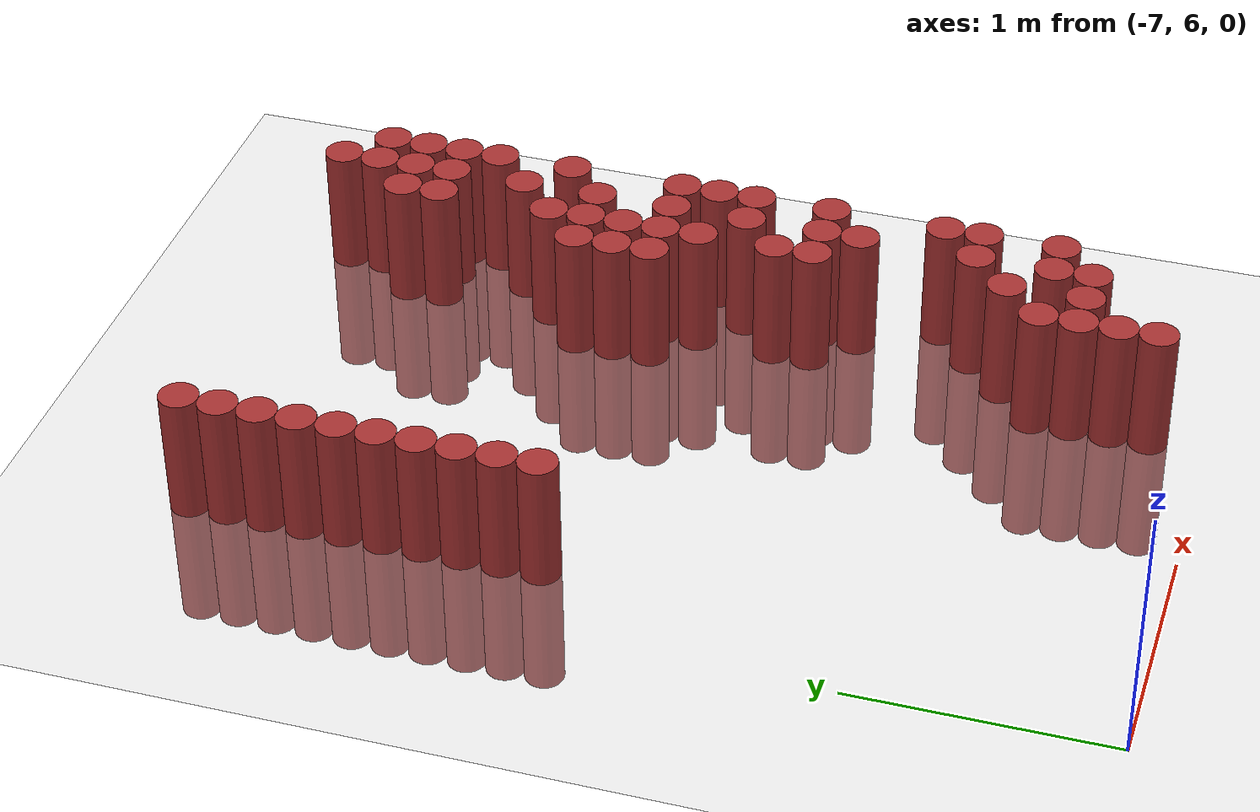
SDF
<sdf version="1.6">
 <world name="default">
  <model name="ground_plane">
   <static>1</static>
   <link name="link">
    <collision name="collision">
     <geometry><plane><normal>0 0 1</normal><size>100 100</size></plane></geometry>
     <surface><friction><ode><mu>100</mu><mu2>50</mu2></ode></friction></surface>
    </collision>
    <visual name="visual">
     <cast_shadows>0</cast_shadows>
     <geometry><plane><normal>0 0 1</normal><size>100 100</size></plane></geometry>
     <material>
      <script><uri>file://media/materials/scripts/gazebo.material</uri><name>Gazebo/Grey</name></script>
     </material>
    </visual>
   </link>
  </model>
  <model name="unit_cylinder_203">
   <static>1</static>
   <pose>-6.675000 8.175000 0.000000 0.000000 0.000000 0.000000</pose>
   <link name="link">
    <inertial>
     <mass>1</mass>
     <inertia><ixx>0.145833</ixx><ixy>0</ixy><ixz>0</ixz><iyy>0.145833</iyy><iyz>0</iyz><izz>0.125</izz></inertia>
    </inertial>
    <collision name="collision">
     <geometry><cylinder><radius>0.075000</radius><length>1</length></cylinder></geometry>
    </collision>
    <visual name="visual">
     <geometry><cylinder><radius>0.075000</radius><length>1</length></cylinder></geometry>
     <material>
      <ambient>0.648000 0.192000 0.192000 1</ambient>
      <diffuse>0.648000 0.192000 0.192000 1</diffuse>
     </material>
     <material>
      <script><name>Gazebo/Grey</name><uri>file://media/materials/scripts/gazebo.material</uri></script>
     </material>
    </visual>
   </link>
  </model>
  <model name="unit_cylinder_204">
   <static>1</static>
   <pose>-6.675000 8.325000 0.000000 0.000000 0.000000 0.000000</pose>
   <link name="link">
    <inertial>
     <mass>1</mass>
     <inertia><ixx>0.145833</ixx><ixy>0</ixy><ixz>0</ixz><iyy>0.145833</iyy><iyz>0</iyz><izz>0.125</izz></inertia>
    </inertial>
    <collision name="collision">
     <geometry><cylinder><radius>0.075000</radius><length>1</length></cylinder></geometry>
    </collision>
    <visual name="visual">
     <geometry><cylinder><radius>0.075000</radius><length>1</length></cylinder></geometry>
     <material>
      <ambient>0.648000 0.192000 0.192000 1</ambient>
      <diffuse>0.648000 0.192000 0.192000 1</diffuse>
     </material>
     <material>
      <script><name>Gazebo/Grey</name><uri>file://media/materials/scripts/gazebo.material</uri></script>
     </material>
    </visual>
   </link>
  </model>
  <model name="unit_cylinder_205">
   <static>1</static>
   <pose>-6.675000 8.475000 0.000000 0.000000 0.000000 0.000000</pose>
   <link name="link">
    <inertial>
     <mass>1</mass>
     <inertia><ixx>0.145833</ixx><ixy>0</ixy><ixz>0</ixz><iyy>0.145833</iyy><iyz>0</iyz><izz>0.125</izz></inertia>
    </inertial>
    <collision name="collision">
     <geometry><cylinder><radius>0.075000</radius><length>1</length></cylinder></geometry>
    </collision>
    <visual name="visual">
     <geometry><cylinder><radius>0.075000</radius><length>1</length></cylinder></geometry>
     <material>
      <ambient>0.648000 0.192000 0.192000 1</ambient>
      <diffuse>0.648000 0.192000 0.192000 1</diffuse>
     </material>
     <material>
      <script><name>Gazebo/Grey</name><uri>file://media/materials/scripts/gazebo.material</uri></script>
     </material>
    </visual>
   </link>
  </model>
  <model name="unit_cylinder_206">
   <static>1</static>
   <pose>-6.675000 8.625000 0.000000 0.000000 0.000000 0.000000</pose>
   <link name="link">
    <inertial>
     <mass>1</mass>
     <inertia><ixx>0.145833</ixx><ixy>0</ixy><ixz>0</ixz><iyy>0.145833</iyy><iyz>0</iyz><izz>0.125</izz></inertia>
    </inertial>
    <collision name="collision">
     <geometry><cylinder><radius>0.075000</radius><length>1</length></cylinder></geometry>
    </collision>
    <visual name="visual">
     <geometry><cylinder><radius>0.075000</radius><length>1</length></cylinder></geometry>
     <material>
      <ambient>0.648000 0.192000 0.192000 1</ambient>
      <diffuse>0.648000 0.192000 0.192000 1</diffuse>
     </material>
     <material>
      <script><name>Gazebo/Grey</name><uri>file://media/materials/scripts/gazebo.material</uri></script>
     </material>
    </visual>
   </link>
  </model>
  <model name="unit_cylinder_207">
   <static>1</static>
   <pose>-6.675000 8.775000 0.000000 0.000000 0.000000 0.000000</pose>
   <link name="link">
    <inertial>
     <mass>1</mass>
     <inertia><ixx>0.145833</ixx><ixy>0</ixy><ixz>0</ixz><iyy>0.145833</iyy><iyz>0</iyz><izz>0.125</izz></inertia>
    </inertial>
    <collision name="collision">
     <geometry><cylinder><radius>0.075000</radius><length>1</length></cylinder></geometry>
    </collision>
    <visual name="visual">
     <geometry><cylinder><radius>0.075000</radius><length>1</length></cylinder></geometry>
     <material>
      <ambient>0.648000 0.192000 0.192000 1</ambient>
      <diffuse>0.648000 0.192000 0.192000 1</diffuse>
     </material>
     <material>
      <script><name>Gazebo/Grey</name><uri>file://media/materials/scripts/gazebo.material</uri></script>
     </material>
    </visual>
   </link>
  </model>
  <model name="unit_cylinder_208">
   <static>1</static>
   <pose>-6.675000 8.925000 0.000000 0.000000 0.000000 0.000000</pose>
   <link name="link">
    <inertial>
     <mass>1</mass>
     <inertia><ixx>0.145833</ixx><ixy>0</ixy><ixz>0</ixz><iyy>0.145833</iyy><iyz>0</iyz><izz>0.125</izz></inertia>
    </inertial>
    <collision name="collision">
     <geometry><cylinder><radius>0.075000</radius><length>1</length></cylinder></geometry>
    </collision>
    <visual name="visual">
     <geometry><cylinder><radius>0.075000</radius><length>1</length></cylinder></geometry>
     <material>
      <ambient>0.648000 0.192000 0.192000 1</ambient>
      <diffuse>0.648000 0.192000 0.192000 1</diffuse>
     </material>
     <material>
      <script><name>Gazebo/Grey</name><uri>file://media/materials/scripts/gazebo.material</uri></script>
     </material>
    </visual>
   </link>
  </model>
  <model name="unit_cylinder_209">
   <static>1</static>
   <pose>-6.675000 9.075000 0.000000 0.000000 0.000000 0.000000</pose>
   <link name="link">
    <inertial>
     <mass>1</mass>
     <inertia><ixx>0.145833</ixx><ixy>0</ixy><ixz>0</ixz><iyy>0.145833</iyy><iyz>0</iyz><izz>0.125</izz></inertia>
    </inertial>
    <collision name="collision">
     <geometry><cylinder><radius>0.075000</radius><length>1</length></cylinder></geometry>
    </collision>
    <visual name="visual">
     <geometry><cylinder><radius>0.075000</radius><length>1</length></cylinder></geometry>
     <material>
      <ambient>0.648000 0.192000 0.192000 1</ambient>
      <diffuse>0.648000 0.192000 0.192000 1</diffuse>
     </material>
     <material>
      <script><name>Gazebo/Grey</name><uri>file://media/materials/scripts/gazebo.material</uri></script>
     </material>
    </visual>
   </link>
  </model>
  <model name="unit_cylinder_210">
   <static>1</static>
   <pose>-6.675000 9.225000 0.000000 0.000000 0.000000 0.000000</pose>
   <link name="link">
    <inertial>
     <mass>1</mass>
     <inertia><ixx>0.145833</ixx><ixy>0</ixy><ixz>0</ixz><iyy>0.145833</iyy><iyz>0</iyz><izz>0.125</izz></inertia>
    </inertial>
    <collision name="collision">
     <geometry><cylinder><radius>0.075000</radius><length>1</length></cylinder></geometry>
    </collision>
    <visual name="visual">
     <geometry><cylinder><radius>0.075000</radius><length>1</length></cylinder></geometry>
     <material>
      <ambient>0.648000 0.192000 0.192000 1</ambient>
      <diffuse>0.648000 0.192000 0.192000 1</diffuse>
     </material>
     <material>
      <script><name>Gazebo/Grey</name><uri>file://media/materials/scripts/gazebo.material</uri></script>
     </material>
    </visual>
   </link>
  </model>
  <model name="unit_cylinder_211">
   <static>1</static>
   <pose>-6.675000 9.375000 0.000000 0.000000 0.000000 0.000000</pose>
   <link name="link">
    <inertial>
     <mass>1</mass>
     <inertia><ixx>0.145833</ixx><ixy>0</ixy><ixz>0</ixz><iyy>0.145833</iyy><iyz>0</iyz><izz>0.125</izz></inertia>
    </inertial>
    <collision name="collision">
     <geometry><cylinder><radius>0.075000</radius><length>1</length></cylinder></geometry>
    </collision>
    <visual name="visual">
     <geometry><cylinder><radius>0.075000</radius><length>1</length></cylinder></geometry>
     <material>
      <ambient>0.648000 0.192000 0.192000 1</ambient>
      <diffuse>0.648000 0.192000 0.192000 1</diffuse>
     </material>
     <material>
      <script><name>Gazebo/Grey</name><uri>file://media/materials/scripts/gazebo.material</uri></script>
     </material>
    </visual>
   </link>
  </model>
  <model name="unit_cylinder_212">
   <static>1</static>
   <pose>-6.675000 9.525000 0.000000 0.000000 0.000000 0.000000</pose>
   <link name="link">
    <inertial>
     <mass>1</mass>
     <inertia><ixx>0.145833</ixx><ixy>0</ixy><ixz>0</ixz><iyy>0.145833</iyy><iyz>0</iyz><izz>0.125</izz></inertia>
    </inertial>
    <collision name="collision">
     <geometry><cylinder><radius>0.075000</radius><length>1</length></cylinder></geometry>
    </collision>
    <visual name="visual">
     <geometry><cylinder><radius>0.075000</radius><length>1</length></cylinder></geometry>
     <material>
      <ambient>0.648000 0.192000 0.192000 1</ambient>
      <diffuse>0.648000 0.192000 0.192000 1</diffuse>
     </material>
     <material>
      <script><name>Gazebo/Grey</name><uri>file://media/materials/scripts/gazebo.material</uri></script>
     </material>
    </visual>
   </link>
  </model>
  <model name="unit_cylinder_221">
   <static>1</static>
   <pose>-5.325000 6.225000 0.000000 0.000000 0.000000 0.000000</pose>
   <link name="link">
    <inertial>
     <mass>1</mass>
     <inertia><ixx>0.145833</ixx><ixy>0</ixy><ixz>0</ixz><iyy>0.145833</iyy><iyz>0</iyz><izz>0.125</izz></inertia>
    </inertial>
    <collision name="collision">
     <geometry><cylinder><radius>0.075000</radius><length>1</length></cylinder></geometry>
    </collision>
    <visual name="visual">
     <geometry><cylinder><radius>0.075000</radius><length>1</length></cylinder></geometry>
     <material>
      <ambient>0.648000 0.192000 0.192000 1</ambient>
      <diffuse>0.648000 0.192000 0.192000 1</diffuse>
     </material>
     <material>
      <script><name>Gazebo/Grey</name><uri>file://media/materials/scripts/gazebo.material</uri></script>
     </material>
    </visual>
   </link>
  </model>
  <model name="unit_cylinder_222">
   <static>1</static>
   <pose>-5.325000 6.375000 0.000000 0.000000 0.000000 0.000000</pose>
   <link name="link">
    <inertial>
     <mass>1</mass>
     <inertia><ixx>0.145833</ixx><ixy>0</ixy><ixz>0</ixz><iyy>0.145833</iyy><iyz>0</iyz><izz>0.125</izz></inertia>
    </inertial>
    <collision name="collision">
     <geometry><cylinder><radius>0.075000</radius><length>1</length></cylinder></geometry>
    </collision>
    <visual name="visual">
     <geometry><cylinder><radius>0.075000</radius><length>1</length></cylinder></geometry>
     <material>
      <ambient>0.648000 0.192000 0.192000 1</ambient>
      <diffuse>0.648000 0.192000 0.192000 1</diffuse>
     </material>
     <material>
      <script><name>Gazebo/Grey</name><uri>file://media/materials/scripts/gazebo.material</uri></script>
     </material>
    </visual>
   </link>
  </model>
  <model name="unit_cylinder_223">
   <static>1</static>
   <pose>-5.325000 6.525000 0.000000 0.000000 0.000000 0.000000</pose>
   <link name="link">
    <inertial>
     <mass>1</mass>
     <inertia><ixx>0.145833</ixx><ixy>0</ixy><ixz>0</ixz><iyy>0.145833</iyy><iyz>0</iyz><izz>0.125</izz></inertia>
    </inertial>
    <collision name="collision">
     <geometry><cylinder><radius>0.075000</radius><length>1</length></cylinder></geometry>
    </collision>
    <visual name="visual">
     <geometry><cylinder><radius>0.075000</radius><length>1</length></cylinder></geometry>
     <material>
      <ambient>0.648000 0.192000 0.192000 1</ambient>
      <diffuse>0.648000 0.192000 0.192000 1</diffuse>
     </material>
     <material>
      <script><name>Gazebo/Grey</name><uri>file://media/materials/scripts/gazebo.material</uri></script>
     </material>
    </visual>
   </link>
  </model>
  <model name="unit_cylinder_224">
   <static>1</static>
   <pose>-5.325000 6.675000 0.000000 0.000000 0.000000 0.000000</pose>
   <link name="link">
    <inertial>
     <mass>1</mass>
     <inertia><ixx>0.145833</ixx><ixy>0</ixy><ixz>0</ixz><iyy>0.145833</iyy><iyz>0</iyz><izz>0.125</izz></inertia>
    </inertial>
    <collision name="collision">
     <geometry><cylinder><radius>0.075000</radius><length>1</length></cylinder></geometry>
    </collision>
    <visual name="visual">
     <geometry><cylinder><radius>0.075000</radius><length>1</length></cylinder></geometry>
     <material>
      <ambient>0.648000 0.192000 0.192000 1</ambient>
      <diffuse>0.648000 0.192000 0.192000 1</diffuse>
     </material>
     <material>
      <script><name>Gazebo/Grey</name><uri>file://media/materials/scripts/gazebo.material</uri></script>
     </material>
    </visual>
   </link>
  </model>
  <model name="unit_cylinder_225">
   <static>1</static>
   <pose>-5.325000 8.175000 0.000000 0.000000 0.000000 0.000000</pose>
   <link name="link">
    <inertial>
     <mass>1</mass>
     <inertia><ixx>0.145833</ixx><ixy>0</ixy><ixz>0</ixz><iyy>0.145833</iyy><iyz>0</iyz><izz>0.125</izz></inertia>
    </inertial>
    <collision name="collision">
     <geometry><cylinder><radius>0.075000</radius><length>1</length></cylinder></geometry>
    </collision>
    <visual name="visual">
     <geometry><cylinder><radius>0.075000</radius><length>1</length></cylinder></geometry>
     <material>
      <ambient>0.648000 0.192000 0.192000 1</ambient>
      <diffuse>0.648000 0.192000 0.192000 1</diffuse>
     </material>
     <material>
      <script><name>Gazebo/Grey</name><uri>file://media/materials/scripts/gazebo.material</uri></script>
     </material>
    </visual>
   </link>
  </model>
  <model name="unit_cylinder_226">
   <static>1</static>
   <pose>-5.325000 8.325000 0.000000 0.000000 0.000000 0.000000</pose>
   <link name="link">
    <inertial>
     <mass>1</mass>
     <inertia><ixx>0.145833</ixx><ixy>0</ixy><ixz>0</ixz><iyy>0.145833</iyy><iyz>0</iyz><izz>0.125</izz></inertia>
    </inertial>
    <collision name="collision">
     <geometry><cylinder><radius>0.075000</radius><length>1</length></cylinder></geometry>
    </collision>
    <visual name="visual">
     <geometry><cylinder><radius>0.075000</radius><length>1</length></cylinder></geometry>
     <material>
      <ambient>0.648000 0.192000 0.192000 1</ambient>
      <diffuse>0.648000 0.192000 0.192000 1</diffuse>
     </material>
     <material>
      <script><name>Gazebo/Grey</name><uri>file://media/materials/scripts/gazebo.material</uri></script>
     </material>
    </visual>
   </link>
  </model>
  <model name="unit_cylinder_227">
   <static>1</static>
   <pose>-5.325000 8.475000 0.000000 0.000000 0.000000 0.000000</pose>
   <link name="link">
    <inertial>
     <mass>1</mass>
     <inertia><ixx>0.145833</ixx><ixy>0</ixy><ixz>0</ixz><iyy>0.145833</iyy><iyz>0</iyz><izz>0.125</izz></inertia>
    </inertial>
    <collision name="collision">
     <geometry><cylinder><radius>0.075000</radius><length>1</length></cylinder></geometry>
    </collision>
    <visual name="visual">
     <geometry><cylinder><radius>0.075000</radius><length>1</length></cylinder></geometry>
     <material>
      <ambient>0.648000 0.192000 0.192000 1</ambient>
      <diffuse>0.648000 0.192000 0.192000 1</diffuse>
     </material>
     <material>
      <script><name>Gazebo/Grey</name><uri>file://media/materials/scripts/gazebo.material</uri></script>
     </material>
    </visual>
   </link>
  </model>
  <model name="unit_cylinder_230">
   <static>1</static>
   <pose>-5.175000 6.525000 0.000000 0.000000 0.000000 0.000000</pose>
   <link name="link">
    <inertial>
     <mass>1</mass>
     <inertia><ixx>0.145833</ixx><ixy>0</ixy><ixz>0</ixz><iyy>0.145833</iyy><iyz>0</iyz><izz>0.125</izz></inertia>
    </inertial>
    <collision name="collision">
     <geometry><cylinder><radius>0.075000</radius><length>1</length></cylinder></geometry>
    </collision>
    <visual name="visual">
     <geometry><cylinder><radius>0.075000</radius><length>1</length></cylinder></geometry>
     <material>
      <ambient>0.648000 0.192000 0.192000 1</ambient>
      <diffuse>0.648000 0.192000 0.192000 1</diffuse>
     </material>
     <material>
      <script><name>Gazebo/Grey</name><uri>file://media/materials/scripts/gazebo.material</uri></script>
     </material>
    </visual>
   </link>
  </model>
  <model name="unit_cylinder_231">
   <static>1</static>
   <pose>-5.175000 6.825000 0.000000 0.000000 0.000000 0.000000</pose>
   <link name="link">
    <inertial>
     <mass>1</mass>
     <inertia><ixx>0.145833</ixx><ixy>0</ixy><ixz>0</ixz><iyy>0.145833</iyy><iyz>0</iyz><izz>0.125</izz></inertia>
    </inertial>
    <collision name="collision">
     <geometry><cylinder><radius>0.075000</radius><length>1</length></cylinder></geometry>
    </collision>
    <visual name="visual">
     <geometry><cylinder><radius>0.075000</radius><length>1</length></cylinder></geometry>
     <material>
      <ambient>0.648000 0.192000 0.192000 1</ambient>
      <diffuse>0.648000 0.192000 0.192000 1</diffuse>
     </material>
     <material>
      <script><name>Gazebo/Grey</name><uri>file://media/materials/scripts/gazebo.material</uri></script>
     </material>
    </visual>
   </link>
  </model>
  <model name="unit_cylinder_232">
   <static>1</static>
   <pose>-5.175000 7.575000 0.000000 0.000000 0.000000 0.000000</pose>
   <link name="link">
    <inertial>
     <mass>1</mass>
     <inertia><ixx>0.145833</ixx><ixy>0</ixy><ixz>0</ixz><iyy>0.145833</iyy><iyz>0</iyz><izz>0.125</izz></inertia>
    </inertial>
    <collision name="collision">
     <geometry><cylinder><radius>0.075000</radius><length>1</length></cylinder></geometry>
    </collision>
    <visual name="visual">
     <geometry><cylinder><radius>0.075000</radius><length>1</length></cylinder></geometry>
     <material>
      <ambient>0.648000 0.192000 0.192000 1</ambient>
      <diffuse>0.648000 0.192000 0.192000 1</diffuse>
     </material>
     <material>
      <script><name>Gazebo/Grey</name><uri>file://media/materials/scripts/gazebo.material</uri></script>
     </material>
    </visual>
   </link>
  </model>
  <model name="unit_cylinder_233">
   <static>1</static>
   <pose>-5.175000 7.725000 0.000000 0.000000 0.000000 0.000000</pose>
   <link name="link">
    <inertial>
     <mass>1</mass>
     <inertia><ixx>0.145833</ixx><ixy>0</ixy><ixz>0</ixz><iyy>0.145833</iyy><iyz>0</iyz><izz>0.125</izz></inertia>
    </inertial>
    <collision name="collision">
     <geometry><cylinder><radius>0.075000</radius><length>1</length></cylinder></geometry>
    </collision>
    <visual name="visual">
     <geometry><cylinder><radius>0.075000</radius><length>1</length></cylinder></geometry>
     <material>
      <ambient>0.648000 0.192000 0.192000 1</ambient>
      <diffuse>0.648000 0.192000 0.192000 1</diffuse>
     </material>
     <material>
      <script><name>Gazebo/Grey</name><uri>file://media/materials/scripts/gazebo.material</uri></script>
     </material>
    </visual>
   </link>
  </model>
  <model name="unit_cylinder_234">
   <static>1</static>
   <pose>-5.175000 8.025000 0.000000 0.000000 0.000000 0.000000</pose>
   <link name="link">
    <inertial>
     <mass>1</mass>
     <inertia><ixx>0.145833</ixx><ixy>0</ixy><ixz>0</ixz><iyy>0.145833</iyy><iyz>0</iyz><izz>0.125</izz></inertia>
    </inertial>
    <collision name="collision">
     <geometry><cylinder><radius>0.075000</radius><length>1</length></cylinder></geometry>
    </collision>
    <visual name="visual">
     <geometry><cylinder><radius>0.075000</radius><length>1</length></cylinder></geometry>
     <material>
      <ambient>0.648000 0.192000 0.192000 1</ambient>
      <diffuse>0.648000 0.192000 0.192000 1</diffuse>
     </material>
     <material>
      <script><name>Gazebo/Grey</name><uri>file://media/materials/scripts/gazebo.material</uri></script>
     </material>
    </visual>
   </link>
  </model>
  <model name="unit_cylinder_235">
   <static>1</static>
   <pose>-5.175000 8.175000 0.000000 0.000000 0.000000 0.000000</pose>
   <link name="link">
    <inertial>
     <mass>1</mass>
     <inertia><ixx>0.145833</ixx><ixy>0</ixy><ixz>0</ixz><iyy>0.145833</iyy><iyz>0</iyz><izz>0.125</izz></inertia>
    </inertial>
    <collision name="collision">
     <geometry><cylinder><radius>0.075000</radius><length>1</length></cylinder></geometry>
    </collision>
    <visual name="visual">
     <geometry><cylinder><radius>0.075000</radius><length>1</length></cylinder></geometry>
     <material>
      <ambient>0.648000 0.192000 0.192000 1</ambient>
      <diffuse>0.648000 0.192000 0.192000 1</diffuse>
     </material>
     <material>
      <script><name>Gazebo/Grey</name><uri>file://media/materials/scripts/gazebo.material</uri></script>
     </material>
    </visual>
   </link>
  </model>
  <model name="unit_cylinder_236">
   <static>1</static>
   <pose>-5.175000 8.325000 0.000000 0.000000 0.000000 0.000000</pose>
   <link name="link">
    <inertial>
     <mass>1</mass>
     <inertia><ixx>0.145833</ixx><ixy>0</ixy><ixz>0</ixz><iyy>0.145833</iyy><iyz>0</iyz><izz>0.125</izz></inertia>
    </inertial>
    <collision name="collision">
     <geometry><cylinder><radius>0.075000</radius><length>1</length></cylinder></geometry>
    </collision>
    <visual name="visual">
     <geometry><cylinder><radius>0.075000</radius><length>1</length></cylinder></geometry>
     <material>
      <ambient>0.648000 0.192000 0.192000 1</ambient>
      <diffuse>0.648000 0.192000 0.192000 1</diffuse>
     </material>
     <material>
      <script><name>Gazebo/Grey</name><uri>file://media/materials/scripts/gazebo.material</uri></script>
     </material>
    </visual>
   </link>
  </model>
  <model name="unit_cylinder_237">
   <static>1</static>
   <pose>-5.175000 8.475000 0.000000 0.000000 0.000000 0.000000</pose>
   <link name="link">
    <inertial>
     <mass>1</mass>
     <inertia><ixx>0.145833</ixx><ixy>0</ixy><ixz>0</ixz><iyy>0.145833</iyy><iyz>0</iyz><izz>0.125</izz></inertia>
    </inertial>
    <collision name="collision">
     <geometry><cylinder><radius>0.075000</radius><length>1</length></cylinder></geometry>
    </collision>
    <visual name="visual">
     <geometry><cylinder><radius>0.075000</radius><length>1</length></cylinder></geometry>
     <material>
      <ambient>0.648000 0.192000 0.192000 1</ambient>
      <diffuse>0.648000 0.192000 0.192000 1</diffuse>
     </material>
     <material>
      <script><name>Gazebo/Grey</name><uri>file://media/materials/scripts/gazebo.material</uri></script>
     </material>
    </visual>
   </link>
  </model>
  <model name="unit_cylinder_238">
   <static>1</static>
   <pose>-5.175000 8.625000 0.000000 0.000000 0.000000 0.000000</pose>
   <link name="link">
    <inertial>
     <mass>1</mass>
     <inertia><ixx>0.145833</ixx><ixy>0</ixy><ixz>0</ixz><iyy>0.145833</iyy><iyz>0</iyz><izz>0.125</izz></inertia>
    </inertial>
    <collision name="collision">
     <geometry><cylinder><radius>0.075000</radius><length>1</length></cylinder></geometry>
    </collision>
    <visual name="visual">
     <geometry><cylinder><radius>0.075000</radius><length>1</length></cylinder></geometry>
     <material>
      <ambient>0.648000 0.192000 0.192000 1</ambient>
      <diffuse>0.648000 0.192000 0.192000 1</diffuse>
     </material>
     <material>
      <script><name>Gazebo/Grey</name><uri>file://media/materials/scripts/gazebo.material</uri></script>
     </material>
    </visual>
   </link>
  </model>
  <model name="unit_cylinder_239">
   <static>1</static>
   <pose>-5.175000 9.075000 0.000000 0.000000 0.000000 0.000000</pose>
   <link name="link">
    <inertial>
     <mass>1</mass>
     <inertia><ixx>0.145833</ixx><ixy>0</ixy><ixz>0</ixz><iyy>0.145833</iyy><iyz>0</iyz><izz>0.125</izz></inertia>
    </inertial>
    <collision name="collision">
     <geometry><cylinder><radius>0.075000</radius><length>1</length></cylinder></geometry>
    </collision>
    <visual name="visual">
     <geometry><cylinder><radius>0.075000</radius><length>1</length></cylinder></geometry>
     <material>
      <ambient>0.648000 0.192000 0.192000 1</ambient>
      <diffuse>0.648000 0.192000 0.192000 1</diffuse>
     </material>
     <material>
      <script><name>Gazebo/Grey</name><uri>file://media/materials/scripts/gazebo.material</uri></script>
     </material>
    </visual>
   </link>
  </model>
  <model name="unit_cylinder_240">
   <static>1</static>
   <pose>-5.175000 9.225000 0.000000 0.000000 0.000000 0.000000</pose>
   <link name="link">
    <inertial>
     <mass>1</mass>
     <inertia><ixx>0.145833</ixx><ixy>0</ixy><ixz>0</ixz><iyy>0.145833</iyy><iyz>0</iyz><izz>0.125</izz></inertia>
    </inertial>
    <collision name="collision">
     <geometry><cylinder><radius>0.075000</radius><length>1</length></cylinder></geometry>
    </collision>
    <visual name="visual">
     <geometry><cylinder><radius>0.075000</radius><length>1</length></cylinder></geometry>
     <material>
      <ambient>0.648000 0.192000 0.192000 1</ambient>
      <diffuse>0.648000 0.192000 0.192000 1</diffuse>
     </material>
     <material>
      <script><name>Gazebo/Grey</name><uri>file://media/materials/scripts/gazebo.material</uri></script>
     </material>
    </visual>
   </link>
  </model>
  <model name="unit_cylinder_246">
   <static>1</static>
   <pose>-5.025000 6.525000 0.000000 0.000000 0.000000 0.000000</pose>
   <link name="link">
    <inertial>
     <mass>1</mass>
     <inertia><ixx>0.145833</ixx><ixy>0</ixy><ixz>0</ixz><iyy>0.145833</iyy><iyz>0</iyz><izz>0.125</izz></inertia>
    </inertial>
    <collision name="collision">
     <geometry><cylinder><radius>0.075000</radius><length>1</length></cylinder></geometry>
    </collision>
    <visual name="visual">
     <geometry><cylinder><radius>0.075000</radius><length>1</length></cylinder></geometry>
     <material>
      <ambient>0.648000 0.192000 0.192000 1</ambient>
      <diffuse>0.648000 0.192000 0.192000 1</diffuse>
     </material>
     <material>
      <script><name>Gazebo/Grey</name><uri>file://media/materials/scripts/gazebo.material</uri></script>
     </material>
    </visual>
   </link>
  </model>
  <model name="unit_cylinder_247">
   <static>1</static>
   <pose>-5.025000 6.675000 0.000000 0.000000 0.000000 0.000000</pose>
   <link name="link">
    <inertial>
     <mass>1</mass>
     <inertia><ixx>0.145833</ixx><ixy>0</ixy><ixz>0</ixz><iyy>0.145833</iyy><iyz>0</iyz><izz>0.125</izz></inertia>
    </inertial>
    <collision name="collision">
     <geometry><cylinder><radius>0.075000</radius><length>1</length></cylinder></geometry>
    </collision>
    <visual name="visual">
     <geometry><cylinder><radius>0.075000</radius><length>1</length></cylinder></geometry>
     <material>
      <ambient>0.648000 0.192000 0.192000 1</ambient>
      <diffuse>0.648000 0.192000 0.192000 1</diffuse>
     </material>
     <material>
      <script><name>Gazebo/Grey</name><uri>file://media/materials/scripts/gazebo.material</uri></script>
     </material>
    </visual>
   </link>
  </model>
  <model name="unit_cylinder_248">
   <static>1</static>
   <pose>-5.025000 6.975000 0.000000 0.000000 0.000000 0.000000</pose>
   <link name="link">
    <inertial>
     <mass>1</mass>
     <inertia><ixx>0.145833</ixx><ixy>0</ixy><ixz>0</ixz><iyy>0.145833</iyy><iyz>0</iyz><izz>0.125</izz></inertia>
    </inertial>
    <collision name="collision">
     <geometry><cylinder><radius>0.075000</radius><length>1</length></cylinder></geometry>
    </collision>
    <visual name="visual">
     <geometry><cylinder><radius>0.075000</radius><length>1</length></cylinder></geometry>
     <material>
      <ambient>0.648000 0.192000 0.192000 1</ambient>
      <diffuse>0.648000 0.192000 0.192000 1</diffuse>
     </material>
     <material>
      <script><name>Gazebo/Grey</name><uri>file://media/materials/scripts/gazebo.material</uri></script>
     </material>
    </visual>
   </link>
  </model>
  <model name="unit_cylinder_249">
   <static>1</static>
   <pose>-5.025000 7.425000 0.000000 0.000000 0.000000 0.000000</pose>
   <link name="link">
    <inertial>
     <mass>1</mass>
     <inertia><ixx>0.145833</ixx><ixy>0</ixy><ixz>0</ixz><iyy>0.145833</iyy><iyz>0</iyz><izz>0.125</izz></inertia>
    </inertial>
    <collision name="collision">
     <geometry><cylinder><radius>0.075000</radius><length>1</length></cylinder></geometry>
    </collision>
    <visual name="visual">
     <geometry><cylinder><radius>0.075000</radius><length>1</length></cylinder></geometry>
     <material>
      <ambient>0.648000 0.192000 0.192000 1</ambient>
      <diffuse>0.648000 0.192000 0.192000 1</diffuse>
     </material>
     <material>
      <script><name>Gazebo/Grey</name><uri>file://media/materials/scripts/gazebo.material</uri></script>
     </material>
    </visual>
   </link>
  </model>
  <model name="unit_cylinder_250">
   <static>1</static>
   <pose>-5.025000 7.575000 0.000000 0.000000 0.000000 0.000000</pose>
   <link name="link">
    <inertial>
     <mass>1</mass>
     <inertia><ixx>0.145833</ixx><ixy>0</ixy><ixz>0</ixz><iyy>0.145833</iyy><iyz>0</iyz><izz>0.125</izz></inertia>
    </inertial>
    <collision name="collision">
     <geometry><cylinder><radius>0.075000</radius><length>1</length></cylinder></geometry>
    </collision>
    <visual name="visual">
     <geometry><cylinder><radius>0.075000</radius><length>1</length></cylinder></geometry>
     <material>
      <ambient>0.648000 0.192000 0.192000 1</ambient>
      <diffuse>0.648000 0.192000 0.192000 1</diffuse>
     </material>
     <material>
      <script><name>Gazebo/Grey</name><uri>file://media/materials/scripts/gazebo.material</uri></script>
     </material>
    </visual>
   </link>
  </model>
  <model name="unit_cylinder_251">
   <static>1</static>
   <pose>-5.025000 7.875000 0.000000 0.000000 0.000000 0.000000</pose>
   <link name="link">
    <inertial>
     <mass>1</mass>
     <inertia><ixx>0.145833</ixx><ixy>0</ixy><ixz>0</ixz><iyy>0.145833</iyy><iyz>0</iyz><izz>0.125</izz></inertia>
    </inertial>
    <collision name="collision">
     <geometry><cylinder><radius>0.075000</radius><length>1</length></cylinder></geometry>
    </collision>
    <visual name="visual">
     <geometry><cylinder><radius>0.075000</radius><length>1</length></cylinder></geometry>
     <material>
      <ambient>0.648000 0.192000 0.192000 1</ambient>
      <diffuse>0.648000 0.192000 0.192000 1</diffuse>
     </material>
     <material>
      <script><name>Gazebo/Grey</name><uri>file://media/materials/scripts/gazebo.material</uri></script>
     </material>
    </visual>
   </link>
  </model>
  <model name="unit_cylinder_252">
   <static>1</static>
   <pose>-5.025000 8.175000 0.000000 0.000000 0.000000 0.000000</pose>
   <link name="link">
    <inertial>
     <mass>1</mass>
     <inertia><ixx>0.145833</ixx><ixy>0</ixy><ixz>0</ixz><iyy>0.145833</iyy><iyz>0</iyz><izz>0.125</izz></inertia>
    </inertial>
    <collision name="collision">
     <geometry><cylinder><radius>0.075000</radius><length>1</length></cylinder></geometry>
    </collision>
    <visual name="visual">
     <geometry><cylinder><radius>0.075000</radius><length>1</length></cylinder></geometry>
     <material>
      <ambient>0.648000 0.192000 0.192000 1</ambient>
      <diffuse>0.648000 0.192000 0.192000 1</diffuse>
     </material>
     <material>
      <script><name>Gazebo/Grey</name><uri>file://media/materials/scripts/gazebo.material</uri></script>
     </material>
    </visual>
   </link>
  </model>
  <model name="unit_cylinder_253">
   <static>1</static>
   <pose>-5.025000 8.475000 0.000000 0.000000 0.000000 0.000000</pose>
   <link name="link">
    <inertial>
     <mass>1</mass>
     <inertia><ixx>0.145833</ixx><ixy>0</ixy><ixz>0</ixz><iyy>0.145833</iyy><iyz>0</iyz><izz>0.125</izz></inertia>
    </inertial>
    <collision name="collision">
     <geometry><cylinder><radius>0.075000</radius><length>1</length></cylinder></geometry>
    </collision>
    <visual name="visual">
     <geometry><cylinder><radius>0.075000</radius><length>1</length></cylinder></geometry>
     <material>
      <ambient>0.648000 0.192000 0.192000 1</ambient>
      <diffuse>0.648000 0.192000 0.192000 1</diffuse>
     </material>
     <material>
      <script><name>Gazebo/Grey</name><uri>file://media/materials/scripts/gazebo.material</uri></script>
     </material>
    </visual>
   </link>
  </model>
  <model name="unit_cylinder_254">
   <static>1</static>
   <pose>-5.025000 8.775000 0.000000 0.000000 0.000000 0.000000</pose>
   <link name="link">
    <inertial>
     <mass>1</mass>
     <inertia><ixx>0.145833</ixx><ixy>0</ixy><ixz>0</ixz><iyy>0.145833</iyy><iyz>0</iyz><izz>0.125</izz></inertia>
    </inertial>
    <collision name="collision">
     <geometry><cylinder><radius>0.075000</radius><length>1</length></cylinder></geometry>
    </collision>
    <visual name="visual">
     <geometry><cylinder><radius>0.075000</radius><length>1</length></cylinder></geometry>
     <material>
      <ambient>0.648000 0.192000 0.192000 1</ambient>
      <diffuse>0.648000 0.192000 0.192000 1</diffuse>
     </material>
     <material>
      <script><name>Gazebo/Grey</name><uri>file://media/materials/scripts/gazebo.material</uri></script>
     </material>
    </visual>
   </link>
  </model>
  <model name="unit_cylinder_255">
   <static>1</static>
   <pose>-5.025000 9.075000 0.000000 0.000000 0.000000 0.000000</pose>
   <link name="link">
    <inertial>
     <mass>1</mass>
     <inertia><ixx>0.145833</ixx><ixy>0</ixy><ixz>0</ixz><iyy>0.145833</iyy><iyz>0</iyz><izz>0.125</izz></inertia>
    </inertial>
    <collision name="collision">
     <geometry><cylinder><radius>0.075000</radius><length>1</length></cylinder></geometry>
    </collision>
    <visual name="visual">
     <geometry><cylinder><radius>0.075000</radius><length>1</length></cylinder></geometry>
     <material>
      <ambient>0.648000 0.192000 0.192000 1</ambient>
      <diffuse>0.648000 0.192000 0.192000 1</diffuse>
     </material>
     <material>
      <script><name>Gazebo/Grey</name><uri>file://media/materials/scripts/gazebo.material</uri></script>
     </material>
    </visual>
   </link>
  </model>
  <model name="unit_cylinder_256">
   <static>1</static>
   <pose>-5.025000 9.225000 0.000000 0.000000 0.000000 0.000000</pose>
   <link name="link">
    <inertial>
     <mass>1</mass>
     <inertia><ixx>0.145833</ixx><ixy>0</ixy><ixz>0</ixz><iyy>0.145833</iyy><iyz>0</iyz><izz>0.125</izz></inertia>
    </inertial>
    <collision name="collision">
     <geometry><cylinder><radius>0.075000</radius><length>1</length></cylinder></geometry>
    </collision>
    <visual name="visual">
     <geometry><cylinder><radius>0.075000</radius><length>1</length></cylinder></geometry>
     <material>
      <ambient>0.648000 0.192000 0.192000 1</ambient>
      <diffuse>0.648000 0.192000 0.192000 1</diffuse>
     </material>
     <material>
      <script><name>Gazebo/Grey</name><uri>file://media/materials/scripts/gazebo.material</uri></script>
     </material>
    </visual>
   </link>
  </model>
  <model name="unit_cylinder_257">
   <static>1</static>
   <pose>-5.025000 9.375000 0.000000 0.000000 0.000000 0.000000</pose>
   <link name="link">
    <inertial>
     <mass>1</mass>
     <inertia><ixx>0.145833</ixx><ixy>0</ixy><ixz>0</ixz><iyy>0.145833</iyy><iyz>0</iyz><izz>0.125</izz></inertia>
    </inertial>
    <collision name="collision">
     <geometry><cylinder><radius>0.075000</radius><length>1</length></cylinder></geometry>
    </collision>
    <visual name="visual">
     <geometry><cylinder><radius>0.075000</radius><length>1</length></cylinder></geometry>
     <material>
      <ambient>0.648000 0.192000 0.192000 1</ambient>
      <diffuse>0.648000 0.192000 0.192000 1</diffuse>
     </material>
     <material>
      <script><name>Gazebo/Grey</name><uri>file://media/materials/scripts/gazebo.material</uri></script>
     </material>
    </visual>
   </link>
  </model>
  <model name="unit_cylinder_258">
   <static>1</static>
   <pose>-5.025000 9.525000 0.000000 0.000000 0.000000 0.000000</pose>
   <link name="link">
    <inertial>
     <mass>1</mass>
     <inertia><ixx>0.145833</ixx><ixy>0</ixy><ixz>0</ixz><iyy>0.145833</iyy><iyz>0</iyz><izz>0.125</izz></inertia>
    </inertial>
    <collision name="collision">
     <geometry><cylinder><radius>0.075000</radius><length>1</length></cylinder></geometry>
    </collision>
    <visual name="visual">
     <geometry><cylinder><radius>0.075000</radius><length>1</length></cylinder></geometry>
     <material>
      <ambient>0.648000 0.192000 0.192000 1</ambient>
      <diffuse>0.648000 0.192000 0.192000 1</diffuse>
     </material>
     <material>
      <script><name>Gazebo/Grey</name><uri>file://media/materials/scripts/gazebo.material</uri></script>
     </material>
    </visual>
   </link>
  </model>
  <model name="unit_cylinder_265">
   <static>1</static>
   <pose>-4.875000 6.675000 0.000000 0.000000 0.000000 0.000000</pose>
   <link name="link">
    <inertial>
     <mass>1</mass>
     <inertia><ixx>0.145833</ixx><ixy>0</ixy><ixz>0</ixz><iyy>0.145833</iyy><iyz>0</iyz><izz>0.125</izz></inertia>
    </inertial>
    <collision name="collision">
     <geometry><cylinder><radius>0.075000</radius><length>1</length></cylinder></geometry>
    </collision>
    <visual name="visual">
     <geometry><cylinder><radius>0.075000</radius><length>1</length></cylinder></geometry>
     <material>
      <ambient>0.648000 0.192000 0.192000 1</ambient>
      <diffuse>0.648000 0.192000 0.192000 1</diffuse>
     </material>
     <material>
      <script><name>Gazebo/Grey</name><uri>file://media/materials/scripts/gazebo.material</uri></script>
     </material>
    </visual>
   </link>
  </model>
  <model name="unit_cylinder_266">
   <static>1</static>
   <pose>-4.875000 6.975000 0.000000 0.000000 0.000000 0.000000</pose>
   <link name="link">
    <inertial>
     <mass>1</mass>
     <inertia><ixx>0.145833</ixx><ixy>0</ixy><ixz>0</ixz><iyy>0.145833</iyy><iyz>0</iyz><izz>0.125</izz></inertia>
    </inertial>
    <collision name="collision">
     <geometry><cylinder><radius>0.075000</radius><length>1</length></cylinder></geometry>
    </collision>
    <visual name="visual">
     <geometry><cylinder><radius>0.075000</radius><length>1</length></cylinder></geometry>
     <material>
      <ambient>0.648000 0.192000 0.192000 1</ambient>
      <diffuse>0.648000 0.192000 0.192000 1</diffuse>
     </material>
     <material>
      <script><name>Gazebo/Grey</name><uri>file://media/materials/scripts/gazebo.material</uri></script>
     </material>
    </visual>
   </link>
  </model>
  <model name="unit_cylinder_267">
   <static>1</static>
   <pose>-4.875000 7.125000 0.000000 0.000000 0.000000 0.000000</pose>
   <link name="link">
    <inertial>
     <mass>1</mass>
     <inertia><ixx>0.145833</ixx><ixy>0</ixy><ixz>0</ixz><iyy>0.145833</iyy><iyz>0</iyz><izz>0.125</izz></inertia>
    </inertial>
    <collision name="collision">
     <geometry><cylinder><radius>0.075000</radius><length>1</length></cylinder></geometry>
    </collision>
    <visual name="visual">
     <geometry><cylinder><radius>0.075000</radius><length>1</length></cylinder></geometry>
     <material>
      <ambient>0.648000 0.192000 0.192000 1</ambient>
      <diffuse>0.648000 0.192000 0.192000 1</diffuse>
     </material>
     <material>
      <script><name>Gazebo/Grey</name><uri>file://media/materials/scripts/gazebo.material</uri></script>
     </material>
    </visual>
   </link>
  </model>
  <model name="unit_cylinder_268">
   <static>1</static>
   <pose>-4.875000 7.575000 0.000000 0.000000 0.000000 0.000000</pose>
   <link name="link">
    <inertial>
     <mass>1</mass>
     <inertia><ixx>0.145833</ixx><ixy>0</ixy><ixz>0</ixz><iyy>0.145833</iyy><iyz>0</iyz><izz>0.125</izz></inertia>
    </inertial>
    <collision name="collision">
     <geometry><cylinder><radius>0.075000</radius><length>1</length></cylinder></geometry>
    </collision>
    <visual name="visual">
     <geometry><cylinder><radius>0.075000</radius><length>1</length></cylinder></geometry>
     <material>
      <ambient>0.648000 0.192000 0.192000 1</ambient>
      <diffuse>0.648000 0.192000 0.192000 1</diffuse>
     </material>
     <material>
      <script><name>Gazebo/Grey</name><uri>file://media/materials/scripts/gazebo.material</uri></script>
     </material>
    </visual>
   </link>
  </model>
  <model name="unit_cylinder_269">
   <static>1</static>
   <pose>-4.875000 7.875000 0.000000 0.000000 0.000000 0.000000</pose>
   <link name="link">
    <inertial>
     <mass>1</mass>
     <inertia><ixx>0.145833</ixx><ixy>0</ixy><ixz>0</ixz><iyy>0.145833</iyy><iyz>0</iyz><izz>0.125</izz></inertia>
    </inertial>
    <collision name="collision">
     <geometry><cylinder><radius>0.075000</radius><length>1</length></cylinder></geometry>
    </collision>
    <visual name="visual">
     <geometry><cylinder><radius>0.075000</radius><length>1</length></cylinder></geometry>
     <material>
      <ambient>0.648000 0.192000 0.192000 1</ambient>
      <diffuse>0.648000 0.192000 0.192000 1</diffuse>
     </material>
     <material>
      <script><name>Gazebo/Grey</name><uri>file://media/materials/scripts/gazebo.material</uri></script>
     </material>
    </visual>
   </link>
  </model>
  <model name="unit_cylinder_270">
   <static>1</static>
   <pose>-4.875000 8.025000 0.000000 0.000000 0.000000 0.000000</pose>
   <link name="link">
    <inertial>
     <mass>1</mass>
     <inertia><ixx>0.145833</ixx><ixy>0</ixy><ixz>0</ixz><iyy>0.145833</iyy><iyz>0</iyz><izz>0.125</izz></inertia>
    </inertial>
    <collision name="collision">
     <geometry><cylinder><radius>0.075000</radius><length>1</length></cylinder></geometry>
    </collision>
    <visual name="visual">
     <geometry><cylinder><radius>0.075000</radius><length>1</length></cylinder></geometry>
     <material>
      <ambient>0.648000 0.192000 0.192000 1</ambient>
      <diffuse>0.648000 0.192000 0.192000 1</diffuse>
     </material>
     <material>
      <script><name>Gazebo/Grey</name><uri>file://media/materials/scripts/gazebo.material</uri></script>
     </material>
    </visual>
   </link>
  </model>
  <model name="unit_cylinder_271">
   <static>1</static>
   <pose>-4.875000 8.175000 0.000000 0.000000 0.000000 0.000000</pose>
   <link name="link">
    <inertial>
     <mass>1</mass>
     <inertia><ixx>0.145833</ixx><ixy>0</ixy><ixz>0</ixz><iyy>0.145833</iyy><iyz>0</iyz><izz>0.125</izz></inertia>
    </inertial>
    <collision name="collision">
     <geometry><cylinder><radius>0.075000</radius><length>1</length></cylinder></geometry>
    </collision>
    <visual name="visual">
     <geometry><cylinder><radius>0.075000</radius><length>1</length></cylinder></geometry>
     <material>
      <ambient>0.648000 0.192000 0.192000 1</ambient>
      <diffuse>0.648000 0.192000 0.192000 1</diffuse>
     </material>
     <material>
      <script><name>Gazebo/Grey</name><uri>file://media/materials/scripts/gazebo.material</uri></script>
     </material>
    </visual>
   </link>
  </model>
  <model name="unit_cylinder_272">
   <static>1</static>
   <pose>-4.875000 8.625000 0.000000 0.000000 0.000000 0.000000</pose>
   <link name="link">
    <inertial>
     <mass>1</mass>
     <inertia><ixx>0.145833</ixx><ixy>0</ixy><ixz>0</ixz><iyy>0.145833</iyy><iyz>0</iyz><izz>0.125</izz></inertia>
    </inertial>
    <collision name="collision">
     <geometry><cylinder><radius>0.075000</radius><length>1</length></cylinder></geometry>
    </collision>
    <visual name="visual">
     <geometry><cylinder><radius>0.075000</radius><length>1</length></cylinder></geometry>
     <material>
      <ambient>0.648000 0.192000 0.192000 1</ambient>
      <diffuse>0.648000 0.192000 0.192000 1</diffuse>
     </material>
     <material>
      <script><name>Gazebo/Grey</name><uri>file://media/materials/scripts/gazebo.material</uri></script>
     </material>
    </visual>
   </link>
  </model>
  <model name="unit_cylinder_273">
   <static>1</static>
   <pose>-4.875000 8.925000 0.000000 0.000000 0.000000 0.000000</pose>
   <link name="link">
    <inertial>
     <mass>1</mass>
     <inertia><ixx>0.145833</ixx><ixy>0</ixy><ixz>0</ixz><iyy>0.145833</iyy><iyz>0</iyz><izz>0.125</izz></inertia>
    </inertial>
    <collision name="collision">
     <geometry><cylinder><radius>0.075000</radius><length>1</length></cylinder></geometry>
    </collision>
    <visual name="visual">
     <geometry><cylinder><radius>0.075000</radius><length>1</length></cylinder></geometry>
     <material>
      <ambient>0.648000 0.192000 0.192000 1</ambient>
      <diffuse>0.648000 0.192000 0.192000 1</diffuse>
     </material>
     <material>
      <script><name>Gazebo/Grey</name><uri>file://media/materials/scripts/gazebo.material</uri></script>
     </material>
    </visual>
   </link>
  </model>
  <model name="unit_cylinder_274">
   <static>1</static>
   <pose>-4.875000 9.075000 0.000000 0.000000 0.000000 0.000000</pose>
   <link name="link">
    <inertial>
     <mass>1</mass>
     <inertia><ixx>0.145833</ixx><ixy>0</ixy><ixz>0</ixz><iyy>0.145833</iyy><iyz>0</iyz><izz>0.125</izz></inertia>
    </inertial>
    <collision name="collision">
     <geometry><cylinder><radius>0.075000</radius><length>1</length></cylinder></geometry>
    </collision>
    <visual name="visual">
     <geometry><cylinder><radius>0.075000</radius><length>1</length></cylinder></geometry>
     <material>
      <ambient>0.648000 0.192000 0.192000 1</ambient>
      <diffuse>0.648000 0.192000 0.192000 1</diffuse>
     </material>
     <material>
      <script><name>Gazebo/Grey</name><uri>file://media/materials/scripts/gazebo.material</uri></script>
     </material>
    </visual>
   </link>
  </model>
  <model name="unit_cylinder_275">
   <static>1</static>
   <pose>-4.875000 9.225000 0.000000 0.000000 0.000000 0.000000</pose>
   <link name="link">
    <inertial>
     <mass>1</mass>
     <inertia><ixx>0.145833</ixx><ixy>0</ixy><ixz>0</ixz><iyy>0.145833</iyy><iyz>0</iyz><izz>0.125</izz></inertia>
    </inertial>
    <collision name="collision">
     <geometry><cylinder><radius>0.075000</radius><length>1</length></cylinder></geometry>
    </collision>
    <visual name="visual">
     <geometry><cylinder><radius>0.075000</radius><length>1</length></cylinder></geometry>
     <material>
      <ambient>0.648000 0.192000 0.192000 1</ambient>
      <diffuse>0.648000 0.192000 0.192000 1</diffuse>
     </material>
     <material>
      <script><name>Gazebo/Grey</name><uri>file://media/materials/scripts/gazebo.material</uri></script>
     </material>
    </visual>
   </link>
  </model>
  <model name="unit_cylinder_276">
   <static>1</static>
   <pose>-4.875000 9.375000 0.000000 0.000000 0.000000 0.000000</pose>
   <link name="link">
    <inertial>
     <mass>1</mass>
     <inertia><ixx>0.145833</ixx><ixy>0</ixy><ixz>0</ixz><iyy>0.145833</iyy><iyz>0</iyz><izz>0.125</izz></inertia>
    </inertial>
    <collision name="collision">
     <geometry><cylinder><radius>0.075000</radius><length>1</length></cylinder></geometry>
    </collision>
    <visual name="visual">
     <geometry><cylinder><radius>0.075000</radius><length>1</length></cylinder></geometry>
     <material>
      <ambient>0.648000 0.192000 0.192000 1</ambient>
      <diffuse>0.648000 0.192000 0.192000 1</diffuse>
     </material>
     <material>
      <script><name>Gazebo/Grey</name><uri>file://media/materials/scripts/gazebo.material</uri></script>
     </material>
    </visual>
   </link>
  </model>
 </world>
</sdf>
